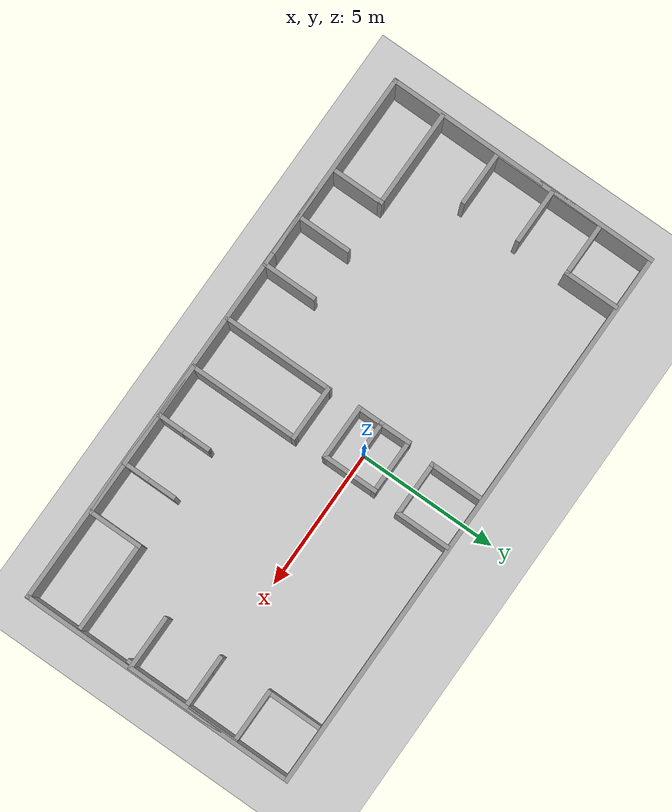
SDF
<sdf version="1.6">
 <world name="default">
  <light name="sun" type="directional">
   <pose>0 0 10 0 -0 0</pose>
   <diffuse>0.8 0.8 0.8 1</diffuse>
   <specular>0.1 0.1 0.1 1</specular>
   <attenuation>
    <range>1000</range>
    <constant>0.9</constant>
    <linear>0.01</linear>
    <quadratic>0.001</quadratic>
   </attenuation>
   <direction>-0.5 0.5 -1</direction>
  </light>
  <model name="ground_plane">
   <static>1</static>
   <link name="link">
    <collision name="collision">
     <geometry><plane><normal>0 0 1</normal><size>100 100</size></plane></geometry>
     <surface><friction><ode><mu>100</mu><mu2>50</mu2></ode></friction></surface>
    </collision>
    <visual name="visual">
     <cast_shadows>0</cast_shadows>
     <geometry><plane><normal>0 0 1</normal><size>100 100</size></plane></geometry>
     <material>
      <script><uri>file://media/materials/scripts/gazebo.material</uri><name>Gazebo/Grey</name></script>
     </material>
    </visual>
   </link>
  </model>
  <gravity>0 0 -9.8</gravity>
  <magnetic_field>6e-06 2.3e-05 -4.2e-05</magnetic_field>
  <atmosphere type="adiabatic"/>
  <physics name="default_physics" default="0" type="ode">
   <max_step_size>0.001</max_step_size>
   <real_time_factor>1</real_time_factor>
   <real_time_update_rate>1000</real_time_update_rate>
  </physics>
  <scene><ambient>0.4 0.4 0.4 1</ambient><background>0.7 0.7 0.7 1</background><shadows>1</shadows></scene>
  <spherical_coordinates>
   <surface_model>EARTH_WGS84</surface_model>
   <latitude_deg>0</latitude_deg>
   <longitude_deg>0</longitude_deg>
   <elevation>0</elevation>
   <heading_deg>0</heading_deg>
  </spherical_coordinates>
  <model name="work_layout">
   <pose>-0.20105 -1.00934 0 0 -0 0</pose>
   <link name="Wall_10">
    <collision name="Wall_10_Collision">
     <geometry><box><size>1.18261 0.15 2.5</size></box></geometry>
     <pose>0 0 1.25 0 -0 0</pose>
    </collision>
    <visual name="Wall_10_Visual">
     <pose>0 0 1.25 0 -0 0</pose>
     <geometry><box><size>1.18261 0.15 2.5</size></box></geometry>
     <material>
      <script><uri>file://media/materials/scripts/gazebo.material</uri><name>Gazebo/Grey</name></script>
      <ambient>1 1 1 1</ambient>
     </material>
     <meta><layer>0</layer></meta>
    </visual>
    <pose>-0.804323 1.47541 0 0 0 -1.56022</pose>
   </link>
   <link name="Wall_12">
    <collision name="Wall_12_Collision">
     <geometry><box><size>1 0.15 2.5</size></box></geometry>
     <pose>0 0 1.25 0 -0 0</pose>
    </collision>
    <visual name="Wall_12_Visual">
     <pose>0 0 1.25 0 -0 0</pose>
     <geometry><box><size>1 0.15 2.5</size></box></geometry>
     <material>
      <script><uri>file://media/materials/scripts/gazebo.material</uri><name>Gazebo/Grey</name></script>
      <ambient>1 1 1 1</ambient>
     </material>
     <meta><layer>0</layer></meta>
    </visual>
    <pose>-0.373864 0.959111 0 0 -0 0</pose>
   </link>
   <link name="Wall_14">
    <collision name="Wall_14_Collision">
     <geometry><box><size>20 0.15 2.5</size></box></geometry>
     <pose>0 0 1.25 0 -0 0</pose>
    </collision>
    <visual name="Wall_14_Visual">
     <pose>0 0 1.25 0 -0 0</pose>
     <geometry><box><size>20 0.15 2.5</size></box></geometry>
     <material>
      <script><uri>file://media/materials/scripts/gazebo.material</uri><name>Gazebo/Grey</name></script>
      <ambient>1 1 1 1</ambient>
     </material>
     <meta><layer>0</layer></meta>
    </visual>
    <pose>0.000196 -4.925 0 0 -0 0</pose>
   </link>
   <link name="Wall_16">
    <collision name="Wall_16_Collision">
     <geometry><box><size>20 0.15 2.5</size></box></geometry>
     <pose>0 0 1.25 0 -0 0</pose>
    </collision>
    <visual name="Wall_16_Visual">
     <pose>0 0 1.25 0 -0 0</pose>
     <geometry><box><size>20 0.15 2.5</size></box></geometry>
     <material>
      <script><uri>file://media/materials/scripts/gazebo.material</uri><name>Gazebo/Grey</name></script>
      <ambient>1 1 1 1</ambient>
     </material>
     <meta><layer>0</layer></meta>
    </visual>
    <pose>0.026136 4.925 0 0 -0 0</pose>
   </link>
   <link name="Wall_17">
    <collision name="Wall_17_Collision">
     <geometry><box><size>10 0.15 2.5</size></box></geometry>
     <pose>0 0 1.25 0 -0 0</pose>
    </collision>
    <visual name="Wall_17_Visual">
     <pose>0 0 1.25 0 -0 0</pose>
     <geometry><box><size>10 0.15 2.5</size></box></geometry>
     <material>
      <script><uri>file://media/materials/scripts/gazebo.material</uri><name>Gazebo/Grey</name></script>
      <ambient>1 1 1 1</ambient>
     </material>
     <meta><layer>0</layer></meta>
    </visual>
    <pose>9.95114 0 0 0 0 -1.5708</pose>
   </link>
   <link name="Wall_19">
    <collision name="Wall_19_Collision">
     <geometry><box><size>4 0.15 2.5</size></box></geometry>
     <pose>0 0 1.25 0 -0 0</pose>
    </collision>
    <visual name="Wall_19_Visual">
     <pose>0 0 1.25 0 -0 0</pose>
     <geometry><box><size>4 0.15 2.5</size></box></geometry>
     <material>
      <script><uri>file://media/materials/scripts/gazebo.material</uri><name>Gazebo/Grey</name></script>
      <ambient>1 1 1 1</ambient>
     </material>
     <meta><layer>0</layer></meta>
    </visual>
    <pose>-0.741195 -2.9392 0 0 -0 1.5708</pose>
   </link>
   <link name="Wall_2">
    <collision name="Wall_2_Collision">
     <geometry><box><size>10 0.15 2.5</size></box></geometry>
     <pose>0 0 1.25 0 -0 0</pose>
    </collision>
    <visual name="Wall_2_Visual">
     <pose>0 0 1.25 0 -0 0</pose>
     <geometry><box><size>10 0.15 2.5</size></box></geometry>
     <material>
      <script><uri>file://media/materials/scripts/gazebo.material</uri><name>Gazebo/Grey</name></script>
      <ambient>1 1 1 1</ambient>
     </material>
     <meta><layer>0</layer></meta>
    </visual>
    <pose>-9.9248 0 0 0 -0 1.56553</pose>
   </link>
   <link name="Wall_20">
    <collision name="Wall_20_Collision">
     <geometry><box><size>2.01504 0.15 2.5</size></box></geometry>
     <pose>0 0 1.25 0 -0 0</pose>
    </collision>
    <visual name="Wall_20_Visual">
     <pose>0 0 1.25 0 -0 0</pose>
     <geometry><box><size>2.01504 0.15 2.5</size></box></geometry>
     <material>
      <script><uri>file://media/materials/scripts/gazebo.material</uri><name>Gazebo/Grey</name></script>
      <ambient>1 1 1 1</ambient>
     </material>
     <meta><layer>0</layer></meta>
    </visual>
    <pose>0.191219 -1.02837 0 0 -0 0.000358</pose>
   </link>
   <link name="Wall_21">
    <collision name="Wall_21_Collision">
     <geometry><box><size>4 0.15 2.5</size></box></geometry>
     <pose>0 0 1.25 0 -0 0</pose>
    </collision>
    <visual name="Wall_21_Visual">
     <pose>0 0 1.25 0 -0 0</pose>
     <geometry><box><size>4 0.15 2.5</size></box></geometry>
     <material>
      <script><uri>file://media/materials/scripts/gazebo.material</uri><name>Gazebo/Grey</name></script>
      <ambient>1 1 1 1</ambient>
     </material>
     <meta><layer>0</layer></meta>
    </visual>
    <pose>1.12363 -2.95303 0 0 0 -1.5708</pose>
   </link>
   <link name="Wall_24">
    <collision name="Wall_24_Collision">
     <geometry><box><size>2 0.15 2.5</size></box></geometry>
     <pose>0 0 1.25 0 -0 0</pose>
    </collision>
    <visual name="Wall_24_Visual">
     <pose>0 0 1.25 0 -0 0</pose>
     <geometry><box><size>2 0.15 2.5</size></box></geometry>
     <material>
      <script><uri>file://media/materials/scripts/gazebo.material</uri><name>Gazebo/Grey</name></script>
      <ambient>1 1 1 1</ambient>
     </material>
     <meta><layer>0</layer></meta>
    </visual>
    <pose>-0.659448 3.92417 0 0 0 -1.5708</pose>
   </link>
   <link name="Wall_25">
    <collision name="Wall_25_Collision">
     <geometry><box><size>2 0.15 2.5</size></box></geometry>
     <pose>0 0 1.25 0 -0 0</pose>
    </collision>
    <visual name="Wall_25_Visual">
     <pose>0 0 1.25 0 -0 0</pose>
     <geometry><box><size>2 0.15 2.5</size></box></geometry>
     <material>
      <script><uri>file://media/materials/scripts/gazebo.material</uri><name>Gazebo/Grey</name></script>
      <ambient>1 1 1 1</ambient>
     </material>
     <meta><layer>0</layer></meta>
    </visual>
    <pose>0.265552 2.99918 0 0 -0 0</pose>
   </link>
   <link name="Wall_26">
    <collision name="Wall_26_Collision">
     <geometry><box><size>2 0.15 2.5</size></box></geometry>
     <pose>0 0 1.25 0 -0 0</pose>
    </collision>
    <visual name="Wall_26_Visual">
     <pose>0 0 1.25 0 -0 0</pose>
     <geometry><box><size>2 0.15 2.5</size></box></geometry>
     <material>
      <script><uri>file://media/materials/scripts/gazebo.material</uri><name>Gazebo/Grey</name></script>
      <ambient>1 1 1 1</ambient>
     </material>
     <meta><layer>0</layer></meta>
    </visual>
    <pose>1.19055 3.92417 0 0 -0 1.5708</pose>
   </link>
   <link name="Wall_28">
    <collision name="Wall_28_Collision">
     <geometry><box><size>0.5 0.15 2.5</size></box></geometry>
     <pose>0 0 1.25 0 -0 0</pose>
    </collision>
    <visual name="Wall_28_Visual">
     <pose>0 0 1.25 0 -0 0</pose>
     <geometry><box><size>0.5 0.15 2.5</size></box></geometry>
     <material>
      <script><uri>file://media/materials/scripts/gazebo.material</uri><name>Gazebo/Grey</name></script>
      <ambient>1 1 1 1</ambient>
     </material>
     <meta><layer>0</layer></meta>
    </visual>
    <pose>-2.98901 -4.9166 0 0 -0 0</pose>
   </link>
   <link name="Wall_29">
    <collision name="Wall_29_Collision">
     <geometry><box><size>2 0.15 2.5</size></box></geometry>
     <pose>0 0 1.25 0 -0 0</pose>
    </collision>
    <visual name="Wall_29_Visual">
     <pose>0 0 1.25 0 -0 0</pose>
     <geometry><box><size>2 0.15 2.5</size></box></geometry>
     <material>
      <script><uri>file://media/materials/scripts/gazebo.material</uri><name>Gazebo/Grey</name></script>
      <ambient>1 1 1 1</ambient>
     </material>
     <meta><layer>0</layer></meta>
    </visual>
    <pose>-2.81401 -3.9916 0 0 -0 1.5708</pose>
   </link>
   <link name="Wall_31">
    <collision name="Wall_31_Collision">
     <geometry><box><size>2 0.15 2.5</size></box></geometry>
     <pose>0 0 1.25 0 -0 0</pose>
    </collision>
    <visual name="Wall_31_Visual">
     <pose>0 0 1.25 0 -0 0</pose>
     <geometry><box><size>2 0.15 2.5</size></box></geometry>
     <material>
      <script><uri>file://media/materials/scripts/gazebo.material</uri><name>Gazebo/Grey</name></script>
      <ambient>1 1 1 1</ambient>
     </material>
     <meta><layer>0</layer></meta>
    </visual>
    <pose>-3.73901 -4.9166 0 0 -0 3.14159</pose>
   </link>
   <link name="Wall_32">
    <collision name="Wall_32_Collision">
     <geometry><box><size>2 0.15 2.5</size></box></geometry>
     <pose>0 0 1.25 0 -0 0</pose>
    </collision>
    <visual name="Wall_32_Visual">
     <pose>0 0 1.25 0 -0 0</pose>
     <geometry><box><size>2 0.15 2.5</size></box></geometry>
     <material>
      <script><uri>file://media/materials/scripts/gazebo.material</uri><name>Gazebo/Grey</name></script>
      <ambient>1 1 1 1</ambient>
     </material>
     <meta><layer>0</layer></meta>
    </visual>
    <pose>-4.66401 -3.9916 0 0 -0 1.5708</pose>
   </link>
   <link name="Wall_34">
    <collision name="Wall_34_Collision">
     <geometry><box><size>2 0.15 2.5</size></box></geometry>
     <pose>0 0 1.25 0 -0 0</pose>
    </collision>
    <visual name="Wall_34_Visual">
     <pose>0 0 1.25 0 -0 0</pose>
     <geometry><box><size>2 0.15 2.5</size></box></geometry>
     <material>
      <script><uri>file://media/materials/scripts/gazebo.material</uri><name>Gazebo/Grey</name></script>
      <ambient>1 1 1 1</ambient>
     </material>
     <meta><layer>0</layer></meta>
    </visual>
    <pose>-5.58901 -4.9166 0 0 -0 3.14159</pose>
   </link>
   <link name="Wall_35">
    <collision name="Wall_35_Collision">
     <geometry><box><size>2 0.15 2.5</size></box></geometry>
     <pose>0 0 1.25 0 -0 0</pose>
    </collision>
    <visual name="Wall_35_Visual">
     <pose>0 0 1.25 0 -0 0</pose>
     <geometry><box><size>2 0.15 2.5</size></box></geometry>
     <material>
      <script><uri>file://media/materials/scripts/gazebo.material</uri><name>Gazebo/Grey</name></script>
      <ambient>1 1 1 1</ambient>
     </material>
     <meta><layer>0</layer></meta>
    </visual>
    <pose>-6.51401 -3.9916 0 0 -0 1.5708</pose>
   </link>
   <link name="Wall_37">
    <collision name="Wall_37_Collision">
     <geometry><box><size>3.5 0.15 2.5</size></box></geometry>
     <pose>0 0 1.25 0 -0 0</pose>
    </collision>
    <visual name="Wall_37_Visual">
     <pose>0 0 1.25 0 -0 0</pose>
     <geometry><box><size>3.5 0.15 2.5</size></box></geometry>
     <material>
      <script><uri>file://media/materials/scripts/gazebo.material</uri><name>Gazebo/Grey</name></script>
      <ambient>1 1 1 1</ambient>
     </material>
     <meta><layer>0</layer></meta>
    </visual>
    <pose>-8.18901 -3.0666 0 0 -0 3.14159</pose>
   </link>
   <link name="Wall_41">
    <collision name="Wall_41_Collision">
     <geometry><box><size>2 0.15 2.5</size></box></geometry>
     <pose>0 0 1.25 0 -0 0</pose>
    </collision>
    <visual name="Wall_41_Visual">
     <pose>0 0 1.25 0 -0 0</pose>
     <geometry><box><size>2 0.15 2.5</size></box></geometry>
     <material>
      <script><uri>file://media/materials/scripts/gazebo.material</uri><name>Gazebo/Grey</name></script>
      <ambient>1 1 1 1</ambient>
     </material>
     <meta><layer>0</layer></meta>
    </visual>
    <pose>-8.96055 -0.945901 0 0 -0 0</pose>
   </link>
   <link name="Wall_43">
    <collision name="Wall_43_Collision">
     <geometry><box><size>2.25 0.15 2.5</size></box></geometry>
     <pose>0 0 1.25 0 -0 0</pose>
    </collision>
    <visual name="Wall_43_Visual">
     <pose>0 0 1.25 0 -0 0</pose>
     <geometry><box><size>2.25 0.15 2.5</size></box></geometry>
     <material>
      <script><uri>file://media/materials/scripts/gazebo.material</uri><name>Gazebo/Grey</name></script>
      <ambient>1 1 1 1</ambient>
     </material>
     <meta><layer>0</layer></meta>
    </visual>
    <pose>-9.88555 0.104099 0 0 -0 1.5708</pose>
   </link>
   <link name="Wall_44">
    <collision name="Wall_44_Collision">
     <geometry><box><size>2 0.15 2.5</size></box></geometry>
     <pose>0 0 1.25 0 -0 0</pose>
    </collision>
    <visual name="Wall_44_Visual">
     <pose>0 0 1.25 0 -0 0</pose>
     <geometry><box><size>2 0.15 2.5</size></box></geometry>
     <material>
      <script><uri>file://media/materials/scripts/gazebo.material</uri><name>Gazebo/Grey</name></script>
      <ambient>1 1 1 1</ambient>
     </material>
     <meta><layer>0</layer></meta>
    </visual>
    <pose>-8.96055 1.1541 0 0 -0 0</pose>
   </link>
   <link name="Wall_46">
    <collision name="Wall_46_Collision">
     <geometry><box><size>2 0.15 2.5</size></box></geometry>
     <pose>0 0 1.25 0 -0 0</pose>
    </collision>
    <visual name="Wall_46_Visual">
     <pose>0 0 1.25 0 -0 0</pose>
     <geometry><box><size>2 0.15 2.5</size></box></geometry>
     <material>
      <script><uri>file://media/materials/scripts/gazebo.material</uri><name>Gazebo/Grey</name></script>
      <ambient>1 1 1 1</ambient>
     </material>
     <meta><layer>0</layer></meta>
    </visual>
    <pose>-9.88555 2.0791 0 0 -0 1.5708</pose>
   </link>
   <link name="Wall_48">
    <collision name="Wall_48_Collision">
     <geometry><box><size>2 0.15 2.5</size></box></geometry>
     <pose>0 0 1.25 0 -0 0</pose>
    </collision>
    <visual name="Wall_48_Visual">
     <pose>0 0 1.25 0 -0 0</pose>
     <geometry><box><size>2 0.15 2.5</size></box></geometry>
     <material>
      <script><uri>file://media/materials/scripts/gazebo.material</uri><name>Gazebo/Grey</name></script>
      <ambient>1 1 1 1</ambient>
     </material>
     <meta><layer>0</layer></meta>
    </visual>
    <pose>-8.96055 3.0041 0 0 -0 0</pose>
   </link>
   <link name="Wall_50">
    <collision name="Wall_50_Collision">
     <geometry><box><size>2 0.15 2.5</size></box></geometry>
     <pose>0 0 1.25 0 -0 0</pose>
    </collision>
    <visual name="Wall_50_Visual">
     <pose>0 0 1.25 0 -0 0</pose>
     <geometry><box><size>2 0.15 2.5</size></box></geometry>
     <material>
      <script><uri>file://media/materials/scripts/gazebo.material</uri><name>Gazebo/Grey</name></script>
      <ambient>1 1 1 1</ambient>
     </material>
     <meta><layer>0</layer></meta>
    </visual>
    <pose>-8.03555 3.9291 0 0 -0 1.5708</pose>
   </link>
   <link name="Wall_52">
    <collision name="Wall_52_Collision">
     <geometry><box><size>2 0.15 2.5</size></box></geometry>
     <pose>0 0 1.25 0 -0 0</pose>
    </collision>
    <visual name="Wall_52_Visual">
     <pose>0 0 1.25 0 -0 0</pose>
     <geometry><box><size>2 0.15 2.5</size></box></geometry>
     <material>
      <script><uri>file://media/materials/scripts/gazebo.material</uri><name>Gazebo/Grey</name></script>
      <ambient>1 1 1 1</ambient>
     </material>
     <meta><layer>0</layer></meta>
    </visual>
    <pose>2.04863 -4.87803 0 0 -0 0</pose>
   </link>
   <link name="Wall_53">
    <collision name="Wall_53_Collision">
     <geometry><box><size>2 0.15 2.5</size></box></geometry>
     <pose>0 0 1.25 0 -0 0</pose>
    </collision>
    <visual name="Wall_53_Visual">
     <pose>0 0 1.25 0 -0 0</pose>
     <geometry><box><size>2 0.15 2.5</size></box></geometry>
     <material>
      <script><uri>file://media/materials/scripts/gazebo.material</uri><name>Gazebo/Grey</name></script>
      <ambient>1 1 1 1</ambient>
     </material>
     <meta><layer>0</layer></meta>
    </visual>
    <pose>2.97363 -3.95303 0 0 -0 1.5708</pose>
   </link>
   <link name="Wall_54">
    <collision name="Wall_54_Collision">
     <geometry><box><size>2 0.15 2.5</size></box></geometry>
     <pose>0 0 1.25 0 -0 0</pose>
    </collision>
    <visual name="Wall_54_Visual">
     <pose>0 0 1.25 0 -0 0</pose>
     <geometry><box><size>2 0.15 2.5</size></box></geometry>
     <material>
      <script><uri>file://media/materials/scripts/gazebo.material</uri><name>Gazebo/Grey</name></script>
      <ambient>1 1 1 1</ambient>
     </material>
     <meta><layer>0</layer></meta>
    </visual>
    <pose>2.97363 -3.95303 0 0 0 -1.5708</pose>
   </link>
   <link name="Wall_55">
    <collision name="Wall_55_Collision">
     <geometry><box><size>2 0.15 2.5</size></box></geometry>
     <pose>0 0 1.25 0 -0 0</pose>
    </collision>
    <visual name="Wall_55_Visual">
     <pose>0 0 1.25 0 -0 0</pose>
     <geometry><box><size>2 0.15 2.5</size></box></geometry>
     <material>
      <script><uri>file://media/materials/scripts/gazebo.material</uri><name>Gazebo/Grey</name></script>
      <ambient>1 1 1 1</ambient>
     </material>
     <meta><layer>0</layer></meta>
    </visual>
    <pose>3.89863 -4.87803 0 0 -0 0</pose>
   </link>
   <link name="Wall_56">
    <collision name="Wall_56_Collision">
     <geometry><box><size>2 0.15 2.5</size></box></geometry>
     <pose>0 0 1.25 0 -0 0</pose>
    </collision>
    <visual name="Wall_56_Visual">
     <pose>0 0 1.25 0 -0 0</pose>
     <geometry><box><size>2 0.15 2.5</size></box></geometry>
     <material>
      <script><uri>file://media/materials/scripts/gazebo.material</uri><name>Gazebo/Grey</name></script>
      <ambient>1 1 1 1</ambient>
     </material>
     <meta><layer>0</layer></meta>
    </visual>
    <pose>4.82363 -3.95303 0 0 -0 1.5708</pose>
   </link>
   <link name="Wall_57">
    <collision name="Wall_57_Collision">
     <geometry><box><size>2 0.15 2.5</size></box></geometry>
     <pose>0 0 1.25 0 -0 0</pose>
    </collision>
    <visual name="Wall_57_Visual">
     <pose>0 0 1.25 0 -0 0</pose>
     <geometry><box><size>2 0.15 2.5</size></box></geometry>
     <material>
      <script><uri>file://media/materials/scripts/gazebo.material</uri><name>Gazebo/Grey</name></script>
      <ambient>1 1 1 1</ambient>
     </material>
     <meta><layer>0</layer></meta>
    </visual>
    <pose>4.82363 -3.95303 0 0 0 -1.5708</pose>
   </link>
   <link name="Wall_58">
    <collision name="Wall_58_Collision">
     <geometry><box><size>2 0.15 2.5</size></box></geometry>
     <pose>0 0 1.25 0 -0 0</pose>
    </collision>
    <visual name="Wall_58_Visual">
     <pose>0 0 1.25 0 -0 0</pose>
     <geometry><box><size>2 0.15 2.5</size></box></geometry>
     <material>
      <script><uri>file://media/materials/scripts/gazebo.material</uri><name>Gazebo/Grey</name></script>
      <ambient>1 1 1 1</ambient>
     </material>
     <meta><layer>0</layer></meta>
    </visual>
    <pose>5.74863 -4.87803 0 0 -0 0</pose>
   </link>
   <link name="Wall_59">
    <collision name="Wall_59_Collision">
     <geometry><box><size>2 0.15 2.5</size></box></geometry>
     <pose>0 0 1.25 0 -0 0</pose>
    </collision>
    <visual name="Wall_59_Visual">
     <pose>0 0 1.25 0 -0 0</pose>
     <geometry><box><size>2 0.15 2.5</size></box></geometry>
     <material>
      <script><uri>file://media/materials/scripts/gazebo.material</uri><name>Gazebo/Grey</name></script>
      <ambient>1 1 1 1</ambient>
     </material>
     <meta><layer>0</layer></meta>
    </visual>
    <pose>6.67363 -3.95303 0 0 -0 1.5708</pose>
   </link>
   <link name="Wall_6">
    <collision name="Wall_6_Collision">
     <geometry><box><size>1 0.15 2.5</size></box></geometry>
     <pose>0 0 1.25 0 -0 0</pose>
    </collision>
    <visual name="Wall_6_Visual">
     <pose>0 0 1.25 0 -0 0</pose>
     <geometry><box><size>1 0.15 2.5</size></box></geometry>
     <material>
      <script><uri>file://media/materials/scripts/gazebo.material</uri><name>Gazebo/Grey</name></script>
      <ambient>1 1 1 1</ambient>
     </material>
     <meta><layer>0</layer></meta>
    </visual>
    <pose>-0.798864 0.534111 0 0 0 -1.5708</pose>
   </link>
   <link name="Wall_60">
    <collision name="Wall_60_Collision">
     <geometry><box><size>3.25 0.15 2.5</size></box></geometry>
     <pose>0 0 1.25 0 -0 0</pose>
    </collision>
    <visual name="Wall_60_Visual">
     <pose>0 0 1.25 0 -0 0</pose>
     <geometry><box><size>3.25 0.15 2.5</size></box></geometry>
     <material>
      <script><uri>file://media/materials/scripts/gazebo.material</uri><name>Gazebo/Grey</name></script>
      <ambient>1 1 1 1</ambient>
     </material>
     <meta><layer>0</layer></meta>
    </visual>
    <pose>8.22363 -3.02803 0 0 -0 0</pose>
   </link>
   <link name="Wall_67">
    <collision name="Wall_67_Collision">
     <geometry><box><size>0.15 0.15 2.5</size></box></geometry>
     <pose>0 0 1.25 0 -0 0</pose>
    </collision>
    <visual name="Wall_67_Visual">
     <pose>0 0 1.25 0 -0 0</pose>
     <geometry><box><size>0.15 0.15 2.5</size></box></geometry>
     <material>
      <script><uri>file://media/materials/scripts/gazebo.material</uri><name>Gazebo/Grey</name></script>
      <ambient>1 1 1 1</ambient>
     </material>
     <meta><layer>0</layer></meta>
    </visual>
    <pose>9.77363 -1.17803 0 0 -0 0</pose>
   </link>
   <link name="Wall_69">
    <collision name="Wall_69_Collision">
     <geometry><box><size>2 0.15 2.5</size></box></geometry>
     <pose>0 0 1.25 0 -0 0</pose>
    </collision>
    <visual name="Wall_69_Visual">
     <pose>0 0 1.25 0 -0 0</pose>
     <geometry><box><size>2 0.15 2.5</size></box></geometry>
     <material>
      <script><uri>file://media/materials/scripts/gazebo.material</uri><name>Gazebo/Grey</name></script>
      <ambient>1 1 1 1</ambient>
     </material>
     <meta><layer>0</layer></meta>
    </visual>
    <pose>8.98238 -1.03968 0 0 -0 3.14159</pose>
   </link>
   <link name="Wall_7">
    <collision name="Wall_7_Collision">
     <geometry><box><size>2 0.15 2.5</size></box></geometry>
     <pose>0 0 1.25 0 -0 0</pose>
    </collision>
    <visual name="Wall_7_Visual">
     <pose>0 0 1.25 0 -0 0</pose>
     <geometry><box><size>2 0.15 2.5</size></box></geometry>
     <material>
      <script><uri>file://media/materials/scripts/gazebo.material</uri><name>Gazebo/Grey</name></script>
      <ambient>1 1 1 1</ambient>
     </material>
     <meta><layer>0</layer></meta>
    </visual>
    <pose>0.126136 0.109111 0 0 -0 0</pose>
   </link>
   <link name="Wall_71">
    <collision name="Wall_71_Collision">
     <geometry><box><size>2.25 0.15 2.5</size></box></geometry>
     <pose>0 0 1.25 0 -0 0</pose>
    </collision>
    <visual name="Wall_71_Visual">
     <pose>0 0 1.25 0 -0 0</pose>
     <geometry><box><size>2.25 0.15 2.5</size></box></geometry>
     <material>
      <script><uri>file://media/materials/scripts/gazebo.material</uri><name>Gazebo/Grey</name></script>
      <ambient>1 1 1 1</ambient>
     </material>
     <meta><layer>0</layer></meta>
    </visual>
    <pose>9.90738 0.010317 0 0 -0 1.5708</pose>
   </link>
   <link name="Wall_72">
    <collision name="Wall_72_Collision">
     <geometry><box><size>2 0.15 2.5</size></box></geometry>
     <pose>0 0 1.25 0 -0 0</pose>
    </collision>
    <visual name="Wall_72_Visual">
     <pose>0 0 1.25 0 -0 0</pose>
     <geometry><box><size>2 0.15 2.5</size></box></geometry>
     <material>
      <script><uri>file://media/materials/scripts/gazebo.material</uri><name>Gazebo/Grey</name></script>
      <ambient>1 1 1 1</ambient>
     </material>
     <meta><layer>0</layer></meta>
    </visual>
    <pose>8.98238 1.06032 0 0 -0 3.14159</pose>
   </link>
   <link name="Wall_73">
    <collision name="Wall_73_Collision">
     <geometry><box><size>2 0.15 2.5</size></box></geometry>
     <pose>0 0 1.25 0 -0 0</pose>
    </collision>
    <visual name="Wall_73_Visual">
     <pose>0 0 1.25 0 -0 0</pose>
     <geometry><box><size>2 0.15 2.5</size></box></geometry>
     <material>
      <script><uri>file://media/materials/scripts/gazebo.material</uri><name>Gazebo/Grey</name></script>
      <ambient>1 1 1 1</ambient>
     </material>
     <meta><layer>0</layer></meta>
    </visual>
    <pose>8.98238 1.06032 0 0 -0 0</pose>
   </link>
   <link name="Wall_74">
    <collision name="Wall_74_Collision">
     <geometry><box><size>2 0.15 2.5</size></box></geometry>
     <pose>0 0 1.25 0 -0 0</pose>
    </collision>
    <visual name="Wall_74_Visual">
     <pose>0 0 1.25 0 -0 0</pose>
     <geometry><box><size>2 0.15 2.5</size></box></geometry>
     <material>
      <script><uri>file://media/materials/scripts/gazebo.material</uri><name>Gazebo/Grey</name></script>
      <ambient>1 1 1 1</ambient>
     </material>
     <meta><layer>0</layer></meta>
    </visual>
    <pose>9.90738 1.98532 0 0 -0 1.5708</pose>
   </link>
   <link name="Wall_75">
    <collision name="Wall_75_Collision">
     <geometry><box><size>2 0.15 2.5</size></box></geometry>
     <pose>0 0 1.25 0 -0 0</pose>
    </collision>
    <visual name="Wall_75_Visual">
     <pose>0 0 1.25 0 -0 0</pose>
     <geometry><box><size>2 0.15 2.5</size></box></geometry>
     <material>
      <script><uri>file://media/materials/scripts/gazebo.material</uri><name>Gazebo/Grey</name></script>
      <ambient>1 1 1 1</ambient>
     </material>
     <meta><layer>0</layer></meta>
    </visual>
    <pose>8.98238 2.91032 0 0 -0 3.14159</pose>
   </link>
   <link name="Wall_76">
    <collision name="Wall_76_Collision">
     <geometry><box><size>2 0.15 2.5</size></box></geometry>
     <pose>0 0 1.25 0 -0 0</pose>
    </collision>
    <visual name="Wall_76_Visual">
     <pose>0 0 1.25 0 -0 0</pose>
     <geometry><box><size>2 0.15 2.5</size></box></geometry>
     <material>
      <script><uri>file://media/materials/scripts/gazebo.material</uri><name>Gazebo/Grey</name></script>
      <ambient>1 1 1 1</ambient>
     </material>
     <meta><layer>0</layer></meta>
    </visual>
    <pose>8.05738 3.83532 0 0 -0 1.5708</pose>
   </link>
   <link name="Wall_8">
    <collision name="Wall_8_Collision">
     <geometry><box><size>2.03261 0.15 2.5</size></box></geometry>
     <pose>0 0 1.25 0 -0 0</pose>
    </collision>
    <visual name="Wall_8_Visual">
     <pose>0 0 1.25 0 -0 0</pose>
     <geometry><box><size>2.03261 0.15 2.5</size></box></geometry>
     <material>
      <script><uri>file://media/materials/scripts/gazebo.material</uri><name>Gazebo/Grey</name></script>
      <ambient>1 1 1 1</ambient>
     </material>
     <meta><layer>0</layer></meta>
    </visual>
    <pose>1.04568 1.05042 0 0 -0 1.57659</pose>
   </link>
   <link name="Wall_9">
    <collision name="Wall_9_Collision">
     <geometry><box><size>2 0.15 2.5</size></box></geometry>
     <pose>0 0 1.25 0 -0 0</pose>
    </collision>
    <visual name="Wall_9_Visual">
     <pose>0 0 1.25 0 -0 0</pose>
     <geometry><box><size>2 0.15 2.5</size></box></geometry>
     <material>
      <script><uri>file://media/materials/scripts/gazebo.material</uri><name>Gazebo/Grey</name></script>
      <ambient>1 1 1 1</ambient>
     </material>
     <meta><layer>0</layer></meta>
    </visual>
    <pose>0.122468 1.99172 0 0 -0 3.14159</pose>
   </link>
   <static>1</static>
  </model>
 </world>
</sdf>
